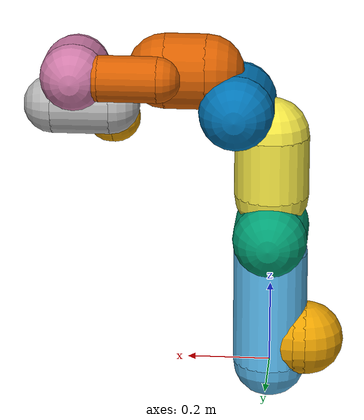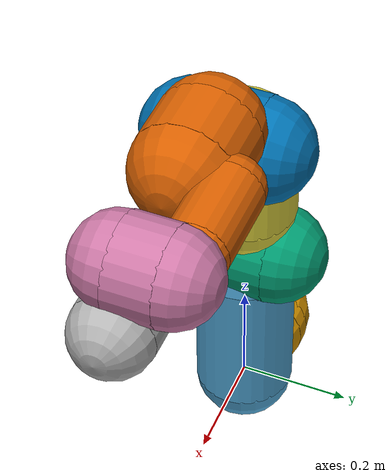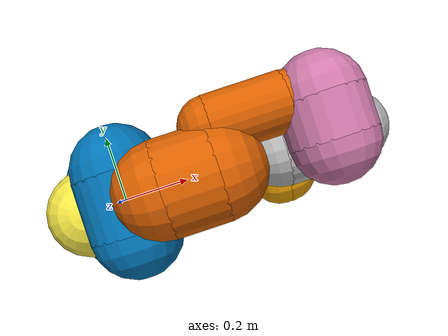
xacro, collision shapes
<?xml version='1.0' encoding='utf-8'?>
<robot xmlns:xacro="http://www.ros.org/wiki/xacro" name="panda">

  <!-- Name of this panda -->
  <xacro:arg name="arm_id" default="panda" />
  <!-- Should a franka_gripper be mounted at the flange?" -->
  <xacro:arg name="hand" default="false" />
  <!-- Is the robot being simulated in gazebo?" -->
  <xacro:arg name="gazebo" default="false" />

  <xacro:unless value="$(arg gazebo)">
    <!-- Create a URDF for a real hardware -->
    <xacro:include filename="$(find franka_description)/robots/panda_arm.xacro" />
    <xacro:panda_arm arm_id="$(arg arm_id)" safety_distance="0.03"/>

    <xacro:if value="$(arg hand)">
      <xacro:include filename="$(find franka_description)/robots/hand.xacro"/>
      <xacro:hand arm_id="$(arg arm_id)" rpy="0 0 ${-pi/4}" connected_to="$(arg arm_id)_link8" safety_distance="0.03"/>
    </xacro:if>
  </xacro:unless>

  <xacro:if value="$(arg gazebo)">

    <xacro:arg name="xyz" default="0 0 0" />
    <xacro:arg name="rpy" default="0 0 0" />

    <!-- Create a simulatable URDF -->
    <xacro:include filename="$(find franka_description)/robots/utils.xacro" />
    <xacro:include filename="$(find franka_description)/robots/panda_gazebo.xacro" />

    <xacro:panda_arm arm_id="$(arg arm_id)" />

    <xacro:if value="$(arg hand)">
      <xacro:hand arm_id="$(arg arm_id)" rpy="0 0 ${-pi/4}" connected_to="$(arg arm_id)_link8" />
      <xacro:gazebo-joint joint="$(arg arm_id)_finger_joint1" transmission="hardware_interface/EffortJointInterface" />
      <xacro:gazebo-joint joint="$(arg arm_id)_finger_joint2" transmission="hardware_interface/EffortJointInterface" />
    </xacro:if>

    <!-- Gazebo requires a joint to a link called "world" for statically mounted robots -->
    <link name="world" />
    <joint name="world_joint" type="fixed">
      <origin xyz="$(arg xyz)" rpy="$(arg rpy)" />
      <parent link="world" />
      <child  link="$(arg arm_id)_link0" />
    </joint>

    <!-- added by jyp on 0525 -->
    <!-- joint definition -->
    <joint name="camera_joint" type="fixed">
      <axis xyz="0 1 0" />
      <origin xyz="-0.5 0.5 1.5" rpy="3.1415927 1.5707963 1.57"/>
      <parent link="world"/>
      <child link="camera_link"/>
    </joint>

    <!-- link definition -->
    <!-- Camera -->
    <link name="camera_link">
      <collision>
        <origin xyz="0 0 0" rpy="0 0 0"/>
        <geometry>
          <box size="0.1 0.04 0.04"/>
        </geometry>
      </collision>

      <visual>
        <origin xyz="0 0 0" rpy="0 0 0"/>
        <geometry>
          <box size="0.1 0.04 0.04"/>
        </geometry>
        <cast_shadows>false</cast_shadows>
      </visual>

      <inertial>
        <mass value="1e-5" />
        <origin xyz="0 0 0" rpy="0 0 0"/>
        <inertia ixx="1e-6" ixy="0" ixz="0" iyy="1e-6" iyz="0" izz="1e-6" />
      </inertial>
    </link>

    <!-- ArUco marker -->
    <joint name="aruco_joint" type="fixed">
      <origin xyz="0.06 0.06 0.0" rpy="0.0 0.0 0.785398"/>
      <parent link="$(arg arm_id)_link8"/>
      <child link="aruco_link"/>
    </joint>
    <link name="aruco_link">
      <collision>
        <origin xyz="-0.04 -0.034 0.050" rpy="-1.5707963267949 0 -1.5707963267949"/>
        <geometry>
          <box size="0.04 0.0001 0.04"/>
        </geometry>
      </collision>

      <visual>
        <origin xyz="-0.017 -0.0595 0.050" rpy="-1.5707963267949 0 -1.5707963267949"/>
        <geometry>
          <box size="0.04 0.001 0.04"/>
        </geometry>
        <pose>0 0 0 1 0 0</pose>
        <cast_shadows>false</cast_shadows>
      </visual>
    </link>

    <!-- Marker connecter link -->

    <!-- ArUco marker -->
    <joint name="marker_joint" type="fixed">
      <parent link="$(arg arm_id)_link8"/>
      <child link="marker_link"/>
      <origin xyz="0.06 0.06 0.0" rpy="0.0 0.0 0.785398"/>
    </joint>
    <link name="marker_link">
      <visual name="visual">
        <origin xyz="-0.04 -0.016 0.053" rpy="-1.5707963267949 0 -1.5707963267949"/>
        <geometry>
          <mesh filename="package://franka_description/meshes/collision/Franka_connecter.stl" scale="0.001 0.001 0.001" />
        </geometry>
        <cast_shadows>false</cast_shadows>
      </visual>
    </link>

    <xacro:gazebo-joint joint="$(arg arm_id)_joint1" transmission="hardware_interface/PositionJointInterface" />
    <xacro:gazebo-joint joint="$(arg arm_id)_joint2" transmission="hardware_interface/PositionJointInterface" />
    <xacro:gazebo-joint joint="$(arg arm_id)_joint3" transmission="hardware_interface/PositionJointInterface" />
    <xacro:gazebo-joint joint="$(arg arm_id)_joint4" transmission="hardware_interface/PositionJointInterface" />
    <xacro:gazebo-joint joint="$(arg arm_id)_joint5" transmission="hardware_interface/PositionJointInterface" />
    <xacro:gazebo-joint joint="$(arg arm_id)_joint6" transmission="hardware_interface/PositionJointInterface" />
    <xacro:gazebo-joint joint="$(arg arm_id)_joint7" transmission="hardware_interface/PositionJointInterface" />

    <xacro:gazebo-joint joint="$(arg arm_id)_joint1" transmission="hardware_interface/VelocityJointInterface" />
    <xacro:gazebo-joint joint="$(arg arm_id)_joint2" transmission="hardware_interface/VelocityJointInterface" />
    <xacro:gazebo-joint joint="$(arg arm_id)_joint3" transmission="hardware_interface/VelocityJointInterface" />
    <xacro:gazebo-joint joint="$(arg arm_id)_joint4" transmission="hardware_interface/VelocityJointInterface" />
    <xacro:gazebo-joint joint="$(arg arm_id)_joint5" transmission="hardware_interface/VelocityJointInterface" />
    <xacro:gazebo-joint joint="$(arg arm_id)_joint6" transmission="hardware_interface/VelocityJointInterface" />
    <xacro:gazebo-joint joint="$(arg arm_id)_joint7" transmission="hardware_interface/VelocityJointInterface" />

    <xacro:gazebo-joint joint="$(arg arm_id)_joint1" transmission="hardware_interface/EffortJointInterface" />
    <xacro:gazebo-joint joint="$(arg arm_id)_joint2" transmission="hardware_interface/EffortJointInterface" />
    <xacro:gazebo-joint joint="$(arg arm_id)_joint3" transmission="hardware_interface/EffortJointInterface" />
    <xacro:gazebo-joint joint="$(arg arm_id)_joint4" transmission="hardware_interface/EffortJointInterface" />
    <xacro:gazebo-joint joint="$(arg arm_id)_joint5" transmission="hardware_interface/EffortJointInterface" />
    <xacro:gazebo-joint joint="$(arg arm_id)_joint6" transmission="hardware_interface/EffortJointInterface" />
    <xacro:gazebo-joint joint="$(arg arm_id)_joint7" transmission="hardware_interface/EffortJointInterface" />

    <xacro:transmission-franka-state arm_id="$(arg arm_id)" />
    <xacro:transmission-franka-model arm_id="$(arg arm_id)"
       root="$(arg arm_id)_joint1"
       tip="$(arg arm_id)_joint8"
     />

    <gazebo>
      <plugin name="gazebo_ros_control" filename="libgazebo_ros_control.so">
        <controlPeriod>0.001</controlPeriod>
        <robotSimType>franka_gazebo/FrankaHWSim</robotSimType>
      </plugin>
      <self_collide>true</self_collide>
    </gazebo>
  </xacro:if>

</robot>

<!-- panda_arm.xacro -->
<robot xmlns:xacro="http://www.ros.org/wiki/xacro" name="panda">
  <!-- safety_distance: Minimum safety distance in [m] by which the collision volumes are expanded and which is enforced during robot motions -->
  <!-- arm_id: Namespace of the panda arm. Serves to differentiate between arms in case of multiple instances. -->
  <xacro:macro name="panda_arm" params="arm_id:='panda' description_pkg:='franka_description' connected_to:='' xyz:='0 0 0' rpy:='0 0 0' safety_distance:=0">
    <xacro:unless value="${not connected_to}">
      <joint name="${arm_id}_joint_${connected_to}" type="fixed">
        <parent link="${connected_to}"/>
        <child link="${arm_id}_link0"/>
        <origin rpy="${rpy}" xyz="${xyz}"/>
      </joint>
    </xacro:unless>
    <link name="${arm_id}_link0">
      <visual>
        <geometry>
          <mesh filename="package://${description_pkg}/meshes/visual/link0.dae"/>
        </geometry>
        <cast_shadows>false</cast_shadows>
      </visual>
      <collision>
        <origin xyz="-0.075 0 0.06" rpy="0 ${pi/2} 0"/>
        <geometry>
          <cylinder radius="${0.06+safety_distance}" length="0.03" />
        </geometry>
      </collision>
      <collision>
        <origin xyz="-0.06 0 0.06" rpy="0 0 0"/>
        <geometry>
          <sphere radius="${0.06+safety_distance}" />
        </geometry>
      </collision>
      <collision>
        <origin xyz="-0.09 0 0.06" rpy="0 0 0"/>
        <geometry>
          <sphere radius="${0.06+safety_distance}" />
        </geometry>
      </collision>
    </link>
    <link name="${arm_id}_link1">
      <visual>
        <geometry>
          <mesh filename="package://${description_pkg}/meshes/visual/link1.dae"/>
        </geometry>
        <cast_shadows>false</cast_shadows>
      </visual>
      <collision>
        <origin xyz="0 0 -0.1915" rpy="0 0 0"/>
        <geometry>
          <cylinder radius="${0.06+safety_distance}" length="0.2830" />
        </geometry>
      </collision>
      <collision>
        <origin xyz="0 0 -0.333" rpy="0 0 0"/>
        <geometry>
          <sphere radius="${0.06+safety_distance}" />
        </geometry>
      </collision>
      <collision>
        <origin xyz="0 0 -0.05" rpy="0 0 0"/>
        <geometry>
          <sphere radius="${0.06+safety_distance}" />
        </geometry>
      </collision>
    </link>
    <joint name="${arm_id}_joint1" type="revolute">
      <safety_controller k_position="100.0" k_velocity="40.0" soft_lower_limit="-2.8973" soft_upper_limit="2.8973"/>
      <origin rpy="0 0 0" xyz="0 0 0.333"/>
      <parent link="${arm_id}_link0"/>
      <child link="${arm_id}_link1"/>
      <axis xyz="0 0 1"/>
      <limit effort="87" lower="-2.8973" upper="2.8973" velocity="2.1750"/>
    </joint>
    <link name="${arm_id}_link2">
      <visual>
        <geometry>
          <mesh filename="package://${description_pkg}/meshes/visual/link2.dae"/>
        </geometry>
        <cast_shadows>false</cast_shadows>
      </visual>
      <collision>
        <origin xyz="0 0 0" rpy="0 0 0"/>
        <geometry>
          <cylinder radius="${0.06+safety_distance}" length="0.12" />
        </geometry>
      </collision>
      <collision>
        <origin xyz="0 0 -0.06" rpy="0 0 0"/>
        <geometry>
          <sphere radius="${0.06+safety_distance}" />
        </geometry>
      </collision>
      <collision>
        <origin xyz="0 0 0.06" rpy="0 0 0"/>
        <geometry>
          <sphere radius="${0.06+safety_distance}" />
        </geometry>
      </collision>
    </link>
    <joint name="${arm_id}_joint2" type="revolute">
      <safety_controller k_position="100.0" k_velocity="40.0" soft_lower_limit="-1.7628" soft_upper_limit="1.7628"/>
      <origin rpy="${-pi/2} 0 0" xyz="0 0 0"/>
      <parent link="${arm_id}_link1"/>
      <child link="${arm_id}_link2"/>
      <axis xyz="0 0 1"/>
      <limit effort="87" lower="-1.7628" upper="1.7628" velocity="2.1750"/>
    </joint>
    <link name="${arm_id}_link3">
      <visual>
        <geometry>
          <mesh filename="package://${description_pkg}/meshes/visual/link3.dae"/>
        </geometry>
        <cast_shadows>false</cast_shadows>
      </visual>
      <collision>
        <origin xyz="0 0 -0.145" rpy="0 0 0"/>
        <geometry>
          <cylinder radius="${0.06+safety_distance}" length="0.15" />
        </geometry>
      </collision>
      <collision>
        <origin xyz="0 0 -0.22" rpy="0 0 0"/>
        <geometry>
          <sphere radius="${0.06+safety_distance}" />
        </geometry>
      </collision>
      <collision>
        <origin xyz="0 0 -0.07" rpy="0 0 0"/>
        <geometry>
          <sphere radius="${0.06+safety_distance}" />
        </geometry>
      </collision>
    </link>
    <joint name="${arm_id}_joint3" type="revolute">
      <safety_controller k_position="100.0" k_velocity="40.0" soft_lower_limit="-2.8973" soft_upper_limit="2.8973"/>
      <origin rpy="${pi/2} 0 0" xyz="0 -0.316 0"/>
      <parent link="${arm_id}_link2"/>
      <child link="${arm_id}_link3"/>
      <axis xyz="0 0 1"/>
      <limit effort="87" lower="-2.8973" upper="2.8973" velocity="2.1750"/>
    </joint>
    <link name="${arm_id}_link4">
      <visual>
        <geometry>
          <mesh filename="package://${description_pkg}/meshes/visual/link4.dae"/>
        </geometry>
        <cast_shadows>false</cast_shadows>
      </visual>
      <collision>
        <origin xyz="0 0 0" rpy="0 0 0"/>
        <geometry>
          <cylinder radius="${0.06+safety_distance}" length="0.12" />
        </geometry>
      </collision>
      <collision>
        <origin xyz="0 0 0.06" rpy="0 0 0"/>
        <geometry>
          <sphere radius="${0.06+safety_distance}" />
        </geometry>
      </collision>
      <collision>
        <origin xyz="0 0 -0.06" rpy="0 0 0"/>
        <geometry>
          <sphere radius="${0.06+safety_distance}" />
        </geometry>
      </collision>
    </link>
    <joint name="${arm_id}_joint4" type="revolute">
      <safety_controller k_position="100.0" k_velocity="40.0" soft_lower_limit="-3.0718" soft_upper_limit="-0.0698"/>
      <origin rpy="${pi/2} 0 0" xyz="0.0825 0 0"/>
      <parent link="${arm_id}_link3"/>
      <child link="${arm_id}_link4"/>
      <axis xyz="0 0 1"/>
      <limit effort="87" lower="-3.0718" upper="-0.0698" velocity="2.1750"/>
    </joint>
    <link name="${arm_id}_link5">
      <visual>
        <geometry>
          <mesh filename="package://${description_pkg}/meshes/visual/link5.dae"/>
        </geometry>
        <cast_shadows>false</cast_shadows>
      </visual>
      <collision>
        <origin xyz="0 0 -0.26" rpy="0 0 0"/>
        <geometry>
          <cylinder radius="${0.06+safety_distance}" length="0.1" />
        </geometry>
      </collision>
      <collision>
        <origin xyz="0 0 -0.31" rpy="0 0 0"/>
        <geometry>
          <sphere radius="${0.06+safety_distance}" />
        </geometry>
      </collision>
      <collision>
        <origin xyz="0 0 -0.21" rpy="0 0 0"/>
        <geometry>
          <sphere radius="${0.06+safety_distance}" />
        </geometry>
      </collision>
      <collision>
        <origin xyz="0 0.08 -0.13" rpy="0 0 0"/>
        <geometry>
          <cylinder radius="${0.025+safety_distance}" length="0.14" />
        </geometry>
      </collision>
      <collision>
        <origin xyz="0 0.08 -0.06" rpy="0 0 0"/>
        <geometry>
          <sphere radius="${0.025+safety_distance}" />
        </geometry>
      </collision>
      <collision>
        <origin xyz="0 0.08 -0.20" rpy="0 0 0"/>
        <geometry>
          <sphere radius="${0.025+safety_distance}" />
        </geometry>
      </collision>

    </link>
    <joint name="${arm_id}_joint5" type="revolute">
      <safety_controller k_position="100.0" k_velocity="40.0" soft_lower_limit="-2.8973" soft_upper_limit="2.8973"/>
      <origin rpy="${-pi/2} 0 0" xyz="-0.0825 0.384 0"/>
      <parent link="${arm_id}_link4"/>
      <child link="${arm_id}_link5"/>
      <axis xyz="0 0 1"/>
      <limit effort="12" lower="-2.8973" upper="2.8973" velocity="2.6100"/>
    </joint>
    <link name="${arm_id}_link6">
      <visual>
        <geometry>
          <mesh filename="package://${description_pkg}/meshes/visual/link6.dae"/>
        </geometry>
        <cast_shadows>false</cast_shadows>
      </visual>
      <collision>
        <origin xyz="0 0 -0.03" rpy="0 0 0"/>
        <geometry>
          <cylinder radius="${0.05+safety_distance}" length="0.08" />
        </geometry>
      </collision>
      <collision>
        <origin xyz="0 0 0.01" rpy="0 0 0"/>
        <geometry>
          <sphere radius="${0.05+safety_distance}" />
        </geometry>
      </collision>
      <collision>
        <origin xyz="0 0 -0.07" rpy="0 0 0"/>
        <geometry>
          <sphere radius="${0.05+safety_distance}" />
        </geometry>
      </collision>
    </link>
    <joint name="${arm_id}_joint6" type="revolute">
      <safety_controller k_position="100.0" k_velocity="40.0" soft_lower_limit="-0.0175" soft_upper_limit="3.7525"/>
      <origin rpy="${pi/2} 0 0" xyz="0 0 0"/>
      <parent link="${arm_id}_link5"/>
      <child link="${arm_id}_link6"/>
      <axis xyz="0 0 1"/>
      <limit effort="12" lower="-0.0175" upper="3.7525" velocity="2.6100"/>
    </joint>
    <link name="${arm_id}_link7">
      <visual>
        <geometry>
          <mesh filename="package://${description_pkg}/meshes/visual/link7.dae"/>
        </geometry>
        <cast_shadows>false</cast_shadows>
      </visual>
      <collision>
        <origin xyz="0 0 0.01" rpy="0 0 0"/>
        <geometry>
          <cylinder radius="${0.04+safety_distance}" length="0.14" />
        </geometry>
      </collision>
      <collision>
        <origin xyz="0 0 0.08" rpy="0 0 0"/>
        <geometry>
          <sphere radius="${0.04+safety_distance}"  />
        </geometry>
      </collision>
      <collision>
        <origin xyz="0 0 -0.06" rpy="0 0 0"/>
        <geometry>
          <sphere radius="${0.04+safety_distance}"  />
        </geometry>
      </collision>
    </link>
    <joint name="${arm_id}_joint7" type="revolute">
      <safety_controller k_position="100.0" k_velocity="40.0" soft_lower_limit="-2.8973" soft_upper_limit="2.8973"/>
      <origin rpy="${pi/2} 0 0" xyz="0.088 0 0"/>
      <parent link="${arm_id}_link6"/>
      <child link="${arm_id}_link7"/>
      <axis xyz="0 0 1"/>
      <limit effort="12" lower="-2.8973" upper="2.8973" velocity="2.6100"/>
    </joint>
    <link name="${arm_id}_link8">
      <collision>
        <origin xyz="0.0424 0.0424 -0.0250" rpy="${pi} ${pi/2} ${pi/2}"/>
        <geometry>
          <cylinder radius="${0.03+safety_distance}"  length="0.01" />
        </geometry>
      </collision>
      <collision>
        <origin xyz="0.0424 0.0424 -0.02" rpy="0 0 0"/>
        <geometry>
          <sphere radius="${0.03+safety_distance}"  />
        </geometry>
      </collision>
      <collision>
        <origin xyz="0.0424 0.0424 -0.03" rpy="0 0 0"/>
        <geometry>
          <sphere radius="${0.03+safety_distance}"  />
        </geometry>
      </collision>
    </link>
    <joint name="${arm_id}_joint8" type="fixed">
      <origin rpy="0 0 0" xyz="0 0 0.107"/>
      <parent link="${arm_id}_link7"/>
      <child link="${arm_id}_link8"/>
    </joint>

  </xacro:macro>
</robot>
